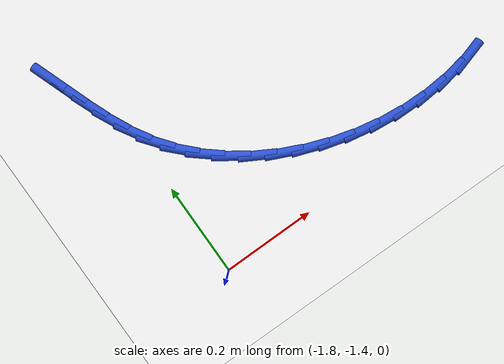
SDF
<sdf version="1.6">
 <world name="default">
  <model name="ground_plane">
   <static>1</static>
   <link name="link">
    <collision name="collision">
     <geometry><plane><normal>0 0 1</normal><size>100 100</size></plane></geometry>
     <surface><friction><ode><mu>100</mu><mu2>50</mu2></ode></friction></surface>
    </collision>
    <visual name="visual">
     <cast_shadows>0</cast_shadows>
     <geometry><plane><normal>0 0 1</normal><size>100 100</size></plane></geometry>
     <material>
      <script><uri>file://media/materials/scripts/gazebo.material</uri><name>Gazebo/WhiteGlow</name></script>
     </material>
    </visual>
   </link>
  </model>
  <model name="line">
   <link name="link_95">
    <pose>-1.8695975017270745 -0.8758923558685325 0.01 0 1.57 -1.2246036847418091</pose>
    <collision name="collision">
     <geometry><cylinder><radius>0.01</radius><length>0.08</length></cylinder></geometry>
    </collision>
    <visual name="visual">
     <material>
      <script><name>Gazebo/Blue</name><uri>file://media/materials/scripts/gazebo.material</uri></script>
     </material>
     <geometry><cylinder><radius>0.01</radius><length>0.08</length></cylinder></geometry>
    </visual>
   </link>
   <link name="link_96">
    <pose>-1.8525727799681522 -0.9230888841425183 0.01 0 1.57 -1.2225319043964806</pose>
    <collision name="collision">
     <geometry><cylinder><radius>0.01</radius><length>0.08</length></cylinder></geometry>
    </collision>
    <visual name="visual">
     <material>
      <script><name>Gazebo/Blue</name><uri>file://media/materials/scripts/gazebo.material</uri></script>
     </material>
     <geometry><cylinder><radius>0.01</radius><length>0.08</length></cylinder></geometry>
    </visual>
   </link>
   <link name="link_97">
    <pose>-1.8353923919083908 -0.9704095769494123 0.01 0 1.57 -1.189542123777308</pose>
    <collision name="collision">
     <geometry><cylinder><radius>0.01</radius><length>0.08</length></cylinder></geometry>
    </collision>
    <visual name="visual">
     <material>
      <script><name>Gazebo/Blue</name><uri>file://media/materials/scripts/gazebo.material</uri></script>
     </material>
     <geometry><cylinder><radius>0.01</radius><length>0.08</length></cylinder></geometry>
    </visual>
   </link>
   <link name="link_98">
    <pose>-1.8166938810926183 -1.017054664726725 0.01 0 1.57 -1.1251199761617594</pose>
    <collision name="collision">
     <geometry><cylinder><radius>0.01</radius><length>0.08</length></cylinder></geometry>
    </collision>
    <visual name="visual">
     <material>
      <script><name>Gazebo/Blue</name><uri>file://media/materials/scripts/gazebo.material</uri></script>
     </material>
     <geometry><cylinder><radius>0.01</radius><length>0.08</length></cylinder></geometry>
    </visual>
   </link>
   <link name="link_99">
    <pose>-1.7951147910656575 -1.062224377911969 0.01 0 1.57 -1.0289224782565676</pose>
    <collision name="collision">
     <geometry><cylinder><radius>0.01</radius><length>0.08</length></cylinder></geometry>
    </collision>
    <visual name="visual">
     <material>
      <script><name>Gazebo/Blue</name><uri>file://media/materials/scripts/gazebo.material</uri></script>
     </material>
     <geometry><cylinder><radius>0.01</radius><length>0.08</length></cylinder></geometry>
    </visual>
   </link>
   <link name="link_100">
    <pose>-1.7692930575484738 -1.1051190735036998 0.01 0 1.57 -0.9112106581954865</pose>
    <collision name="collision">
     <geometry><cylinder><radius>0.01</radius><length>0.08</length></cylinder></geometry>
    </collision>
    <visual name="visual">
     <material>
      <script><name>Gazebo/Blue</name><uri>file://media/materials/scripts/gazebo.material</uri></script>
     </material>
     <geometry><cylinder><radius>0.01</radius><length>0.08</length></cylinder></geometry>
    </visual>
   </link>
   <link name="link_101">
    <pose>-1.7383052054156096 -1.1450806477103785 0.01 0 1.57 -0.7989597108284885</pose>
    <collision name="collision">
     <geometry><cylinder><radius>0.01</radius><length>0.08</length></cylinder></geometry>
    </collision>
    <visual name="visual">
     <material>
      <script><name>Gazebo/Blue</name><uri>file://media/materials/scripts/gazebo.material</uri></script>
     </material>
     <geometry><cylinder><radius>0.01</radius><length>0.08</length></cylinder></geometry>
    </visual>
   </link>
   <link name="link_102">
    <pose>-1.702506551613228 -1.1818636818649777 0.01 0 1.57 -0.6959452284169357</pose>
    <collision name="collision">
     <geometry><cylinder><radius>0.01</radius><length>0.08</length></cylinder></geometry>
    </collision>
    <visual name="visual">
     <material>
      <script><name>Gazebo/Blue</name><uri>file://media/materials/scripts/gazebo.material</uri></script>
     </material>
     <geometry><cylinder><radius>0.01</radius><length>0.08</length></cylinder></geometry>
    </visual>
   </link>
   <link name="link_103">
    <pose>-1.6624842137067921 -1.215297562790399 0.01 0 1.57 -0.6007087953140148</pose>
    <collision name="collision">
     <geometry><cylinder><radius>0.01</radius><length>0.08</length></cylinder></geometry>
    </collision>
    <visual name="visual">
     <material>
      <script><name>Gazebo/Blue</name><uri>file://media/materials/scripts/gazebo.material</uri></script>
     </material>
     <geometry><cylinder><radius>0.01</radius><length>0.08</length></cylinder></geometry>
    </visual>
   </link>
   <link name="link_104">
    <pose>-1.6188253092617664 -1.2452116773095447 0.01 0 1.57 -0.5115805684344442</pose>
    <collision name="collision">
     <geometry><cylinder><radius>0.01</radius><length>0.08</length></cylinder></geometry>
    </collision>
    <visual name="visual">
     <material>
      <script><name>Gazebo/Blue</name><uri>file://media/materials/scripts/gazebo.material</uri></script>
     </material>
     <geometry><cylinder><radius>0.01</radius><length>0.08</length></cylinder></geometry>
    </visual>
   </link>
   <link name="link_105">
    <pose>-1.5721169558436119 -1.2714354122453164 0.01 0 1.57 -0.4268369946308048</pose>
    <collision name="collision">
     <geometry><cylinder><radius>0.01</radius><length>0.08</length></cylinder></geometry>
    </collision>
    <visual name="visual">
     <material>
      <script><name>Gazebo/Blue</name><uri>file://media/materials/scripts/gazebo.material</uri></script>
     </material>
     <geometry><cylinder><radius>0.01</radius><length>0.08</length></cylinder></geometry>
    </visual>
   </link>
   <link name="link_106">
    <pose>-1.5229462710177935 -1.2937981544206167 0.01 0 1.57 -0.34476822368054805</pose>
    <collision name="collision">
     <geometry><cylinder><radius>0.01</radius><length>0.08</length></cylinder></geometry>
    </collision>
    <visual name="visual">
     <material>
      <script><name>Gazebo/Blue</name><uri>file://media/materials/scripts/gazebo.material</uri></script>
     </material>
     <geometry><cylinder><radius>0.01</radius><length>0.08</length></cylinder></geometry>
    </visual>
   </link>
   <link name="link_107">
    <pose>-1.4719003723497732 -1.3121292906583484 0.01 0 1.57 -0.26368936716174995</pose>
    <collision name="collision">
     <geometry><cylinder><radius>0.01</radius><length>0.08</length></cylinder></geometry>
    </collision>
    <visual name="visual">
     <material>
      <script><name>Gazebo/Blue</name><uri>file://media/materials/scripts/gazebo.material</uri></script>
     </material>
     <geometry><cylinder><radius>0.01</radius><length>0.08</length></cylinder></geometry>
    </visual>
   </link>
   <link name="link_108">
    <pose>-1.419566377405014 -1.3262582077814122 0.01 0 1.57 -0.18192182042184177</pose>
    <collision name="collision">
     <geometry><cylinder><radius>0.01</radius><length>0.08</length></cylinder></geometry>
    </collision>
    <visual name="visual">
     <material>
      <script><name>Gazebo/Blue</name><uri>file://media/materials/scripts/gazebo.material</uri></script>
     </material>
     <geometry><cylinder><radius>0.01</radius><length>0.08</length></cylinder></geometry>
    </visual>
   </link>
   <link name="link_109">
    <pose>-1.3665314037489804 -1.3360142926127105 0.01 0 1.57 -0.0977636067307521</pose>
    <collision name="collision">
     <geometry><cylinder><radius>0.01</radius><length>0.08</length></cylinder></geometry>
    </collision>
    <visual name="visual">
     <material>
      <script><name>Gazebo/Blue</name><uri>file://media/materials/scripts/gazebo.material</uri></script>
     </material>
     <geometry><cylinder><radius>0.01</radius><length>0.08</length></cylinder></geometry>
    </visual>
   </link>
   <link name="link_110">
    <pose>-1.3133825689471337 -1.3412269319751453 0.01 0 1.57 -0.009464838233421174</pose>
    <collision name="collision">
     <geometry><cylinder><radius>0.01</radius><length>0.08</length></cylinder></geometry>
    </collision>
    <visual name="visual">
     <material>
      <script><name>Gazebo/Blue</name><uri>file://media/materials/scripts/gazebo.material</uri></script>
     </material>
     <geometry><cylinder><radius>0.01</radius><length>0.08</length></cylinder></geometry>
    </visual>
   </link>
   <link name="link_111">
    <pose>-1.2607069905649375 -1.3417255126916194 0.01 0 1.57 0.0847730679090828</pose>
    <collision name="collision">
     <geometry><cylinder><radius>0.01</radius><length>0.08</length></cylinder></geometry>
    </collision>
    <visual name="visual">
     <material>
      <script><name>Gazebo/Blue</name><uri>file://media/materials/scripts/gazebo.material</uri></script>
     </material>
     <geometry><cylinder><radius>0.01</radius><length>0.08</length></cylinder></geometry>
    </visual>
   </link>
   <link name="link_112">
    <pose>-1.2090917861678567 -1.3373394215850343 0.01 0 1.57 0.1867426764442775</pose>
    <collision name="collision">
     <geometry><cylinder><radius>0.01</radius><length>0.08</length></cylinder></geometry>
    </collision>
    <visual name="visual">
     <material>
      <script><name>Gazebo/Blue</name><uri>file://media/materials/scripts/gazebo.material</uri></script>
     </material>
     <geometry><cylinder><radius>0.01</radius><length>0.08</length></cylinder></geometry>
    </visual>
   </link>
   <link name="link_113">
    <pose>-1.1591238520220988 -1.327898273320482 0.01 0 1.57 0.29298287586406246</pose>
    <collision name="collision">
     <geometry><cylinder><radius>0.01</radius><length>0.08</length></cylinder></geometry>
    </collision>
    <visual name="visual">
     <material>
      <script><name>Gazebo/Blue</name><uri>file://media/materials/scripts/gazebo.material</uri></script>
     </material>
     <geometry><cylinder><radius>0.01</radius><length>0.08</length></cylinder></geometry>
    </visual>
   </link>
  </model>
 </world>
</sdf>
